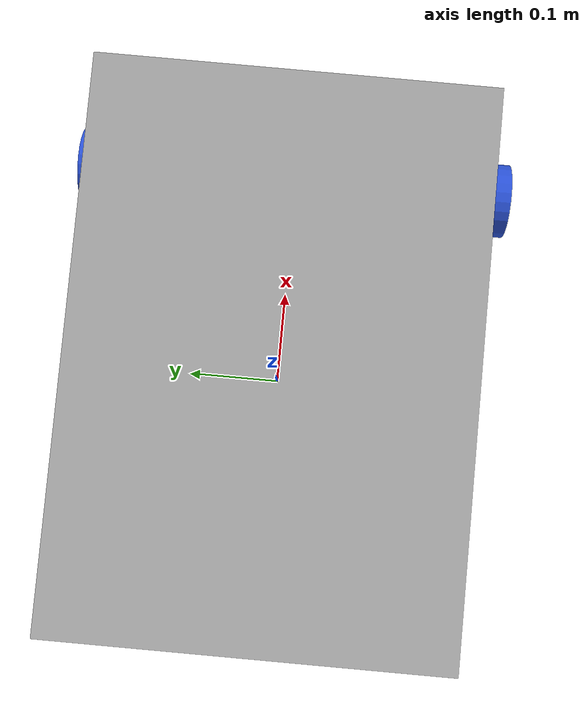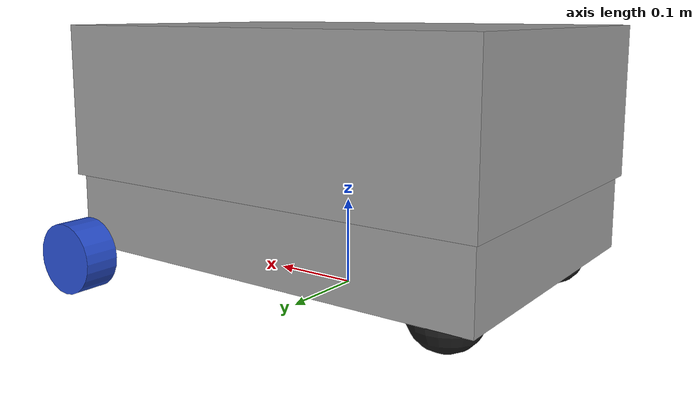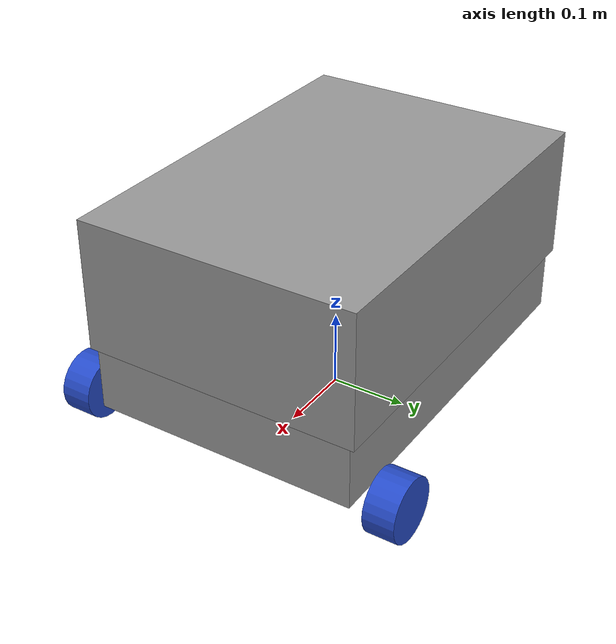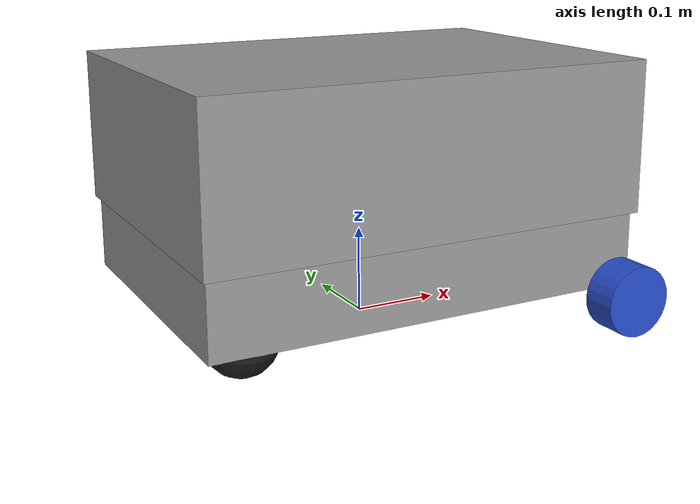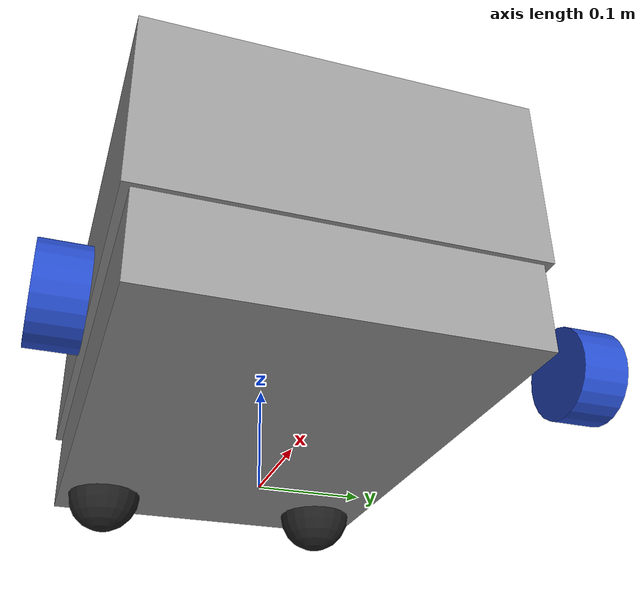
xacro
<?xml version="1.0"?>

<!-- Corpo base do robô, suas juntas e localização de sensores -->
<!-- Dimensões são em metros -->
<robot xmlns:xacro="http://www.ros.org/wiki/xacro">
    <xacro:include filename="materials.xacro"/>
    <xacro:include filename="inertials.xacro"/>

    <!-- Chassi -->
    <xacro:property name="chassiB_x" value="0.507"/>
    <xacro:property name="chassiB_y" value="0.351"/>
    <xacro:property name="chassiB_z" value="0.104"/>    <!-- 0.1 (Parte A) + 0.15 (Parte B) -->

    <xacro:property name="chassiA_x" value="0.516"/>
    <xacro:property name="chassiA_y" value="0.366"/>
    <xacro:property name="chassiA_z" value="0.173"/>

    <!-- Massa do Chassi => (Estimativa Inicial) - 2*(RodasTraseira + RodasApoio) = 6 - 2*(0.055 + 0.05) = 5.79 kg, approx. 5.8 kg -->
    <xacro:property name="chassiB_massa" value="2"/>
    <xacro:property name="chassiA_massa" value="3.8"/>

    <xacro:property name="chassiB_origem" value="0 0 0"/>
    <xacro:property name="chassiB_joint_xyz" value="0 0 0.097"/>

    <xacro:property name="chassiA_origem" value="0 0 0"/>
    <xacro:property name="chassiA_joint_xyz" value="0 0 0.1185"/>

    <!-- Rodas dianteiras -->
    <xacro:property name="roda_raio" value="0.04"/>
    <xacro:property name="roda_comprimento" value="0.04"/>
    <xacro:property name="roda_massa" value="0.5"/>
    <xacro:property name="roda_y" value="0.215"/>
    <xacro:property name="roda_x" value="0.22"/>
    <xacro:property name="roda_z" value="-0.052"/>
    <xacro:property name="roda_mu1" value="0.65"/>
    <xacro:property name="roda_mu2" value="0.65"/>

    <!-- Roda(s) de apoio -->
    <xacro:property name="apoio_raio" value="0.04"/>
    <xacro:property name="apoio_massa" value="0.35"/>
    <xacro:property name="apoio_x" value="-0.2"/>
    <xacro:property name="apoio_y" value="0.125"/>
    <xacro:property name="apoio_z" value="-0.052"/>
    <xacro:property name="apoio_mu1" value="0.2"/>
    <xacro:property name="apoio_mu2" value="0.2"/>

    <link name="base_link"/>

    <!-- Chassi B -->
    <joint name="junta_chassiB" type="fixed">
        <parent link="base_link"/>
        <child link="chassiB"/>
        <origin xyz="${chassiB_joint_xyz}" rpy="0 0 0"/>
    </joint>

    <link name="chassiB">
        <visual>
            <origin xyz="${chassiB_origem}"/>
            <geometry>
                <box size="${chassiB_x} ${chassiB_y} ${chassiB_z}"/>
            </geometry>
            <material name="gray"/>
        </visual>
        <collision>
            <origin xyz="${chassiB_origem}"/>
            <geometry>
                <box size="${chassiB_x} ${chassiB_y} ${chassiB_z}"/>
            </geometry>
        </collision>
        <xacro:inertial_box mass="${chassiB_massa}" x="${chassiB_x}" y="${chassiB_y}" z="${chassiB_z}">
            <origin xyz="${chassiB_origem}" rpy="0 0 0"/>
        </xacro:inertial_box>
    </link>

    <!-- Chassi A -->
    <joint name="junta_chassiA" type="fixed">
        <parent link="chassiB"/>
        <child link="chassiA"/>
        <origin xyz="${chassiA_joint_xyz}" rpy="0 0 0"/>
    </joint>

    <link name="chassiA">
        <visual>
            <origin xyz="${chassiA_origem}"/>
            <geometry>
                <box size="${chassiA_x} ${chassiA_y} ${chassiA_z}"/>
            </geometry>
            <material name="gray"/>
        </visual>
        <collision>
            <origin xyz="${chassiA_origem}"/>
            <geometry>
                <box size="${chassiA_x} ${chassiA_y} ${chassiA_z}"/>
            </geometry>
        </collision>
        <xacro:inertial_box mass="${chassiA_massa}" x="${chassiA_x}" y="${chassiA_y}" z="${chassiA_z}">
            <origin xyz="${chassiA_origem}" rpy="0 0 0"/>
        </xacro:inertial_box>
    </link>

    <!-- Roda Esquerda Dianteira -->
    <joint name="roda_esquerda_joint" type="continuous">
        <parent link="chassiB"/>
        <child link="roda_esquerda"/>
        <origin xyz="${roda_x} ${roda_y} ${roda_z}" rpy="0 0 0"/>
        <axis xyz="0 1 0"/>
    </joint>

    <link name="roda_esquerda">
        <visual>
            <origin xyz="0 0 0" rpy="${pi/2} 0 0"/>
            <geometry><cylinder radius="${roda_raio}" length="${roda_comprimento}"/></geometry>
            <material name="blue"/>
        </visual>
        <collision>
            <origin xyz="0 0 0" rpy="${pi/2} 0 0"/>
            <geometry><cylinder radius="${roda_raio}" length="${roda_comprimento}"/></geometry>
        </collision>
        <xacro:inertial_cylinder mass="${roda_massa}" length="${roda_comprimento}" radius="${roda_raio}">
            <origin xyz="0 0 0" rpy="${pi/2} 0 0"/>
        </xacro:inertial_cylinder>
    </link>
    <gazebo reference="roda_esquerda">
        <mu1>${roda_mu1}</mu1>
        <mu2>${roda_mu2}</mu2>
    </gazebo>

    <!-- Roda Direita Dianteira -->
    <joint name="roda_direita_joint" type="continuous">
        <parent link="chassiB"/>
        <child link="roda_direita"/>
        <origin xyz="${roda_x} -${roda_y} ${roda_z}" rpy="0 0 0"/>
        <axis xyz="0 1 0"/>
    </joint>

    <link name="roda_direita">
        <visual>
            <origin xyz="0 0 0" rpy="${pi/2} 0 0"/>
            <geometry><cylinder radius="${roda_raio}" length="${roda_comprimento}"/></geometry>
            <material name="blue"/>
        </visual>
        <collision>
            <origin xyz="0 0 0" rpy="${pi/2} 0 0"/>
            <geometry><cylinder radius="${roda_raio}" length="${roda_comprimento}"/></geometry>
        </collision>
        <xacro:inertial_cylinder mass="${roda_massa}" length="${roda_comprimento}" radius="${roda_raio}">
            <origin xyz="0 0 0" rpy="${pi/2} 0 0"/>
        </xacro:inertial_cylinder>
    </link>
    <gazebo reference="roda_direita">
        <mu1>${roda_mu1}</mu1>
        <mu2>${roda_mu2}</mu2>
    </gazebo>

    <!-- Rodas de Apoio -->

    <!-- Roda Esquerda -->
    <joint name="roda_boba1_joint" type="fixed">
        <parent link="chassiB"/>
        <child link="roda_boba1"/>
        <origin xyz="${apoio_x} ${apoio_y} ${apoio_z}"/>
    </joint>

    <link name="roda_boba1">

        <visual>
            <geometry>
                <sphere radius="${apoio_raio}"/>
            </geometry>
            <material name="black"/>
        </visual>

        <collision>
            <geometry>
                <sphere radius="${apoio_raio}"/>
            </geometry>
        </collision>

        <xacro:inertial_sphere mass="${apoio_massa}" radius="${apoio_raio}">
            <origin xyz="0 0 0" rpy="0 0 0"/>
        </xacro:inertial_sphere>

    </link>

    <!-- Roda Direita -->
    <joint name="roda_boba2_joint" type="fixed">
        <parent link="chassiB"/>
        <child link="roda_boba2"/>
        <origin xyz="${apoio_x} -${apoio_y} ${apoio_z}"/>
    </joint>

    <link name="roda_boba2">

        <visual>
            <geometry>
                <sphere radius="${apoio_raio}"/>
            </geometry>
            <material name="black"/>
        </visual>

        <collision>
            <geometry>
                <sphere radius="${apoio_raio}"/>
            </geometry>
        </collision>

        <xacro:inertial_sphere mass="${apoio_massa}" radius="${apoio_raio}">
            <origin xyz="0 0 0" rpy="0 0 0"/>
        </xacro:inertial_sphere>

    </link>

    <gazebo reference="roda_boba1">
        <self_collide>false</self_collide>
        <mu1>${apoio_mu1}</mu1>
        <mu2>${apoio_mu2}</mu2>
    </gazebo>

    <gazebo reference="roda_boba2">
        <self_collide>false</self_collide>
        <mu1>${apoio_mu1}</mu1>
        <mu2>${apoio_mu2}</mu2>
    </gazebo>

</robot>
